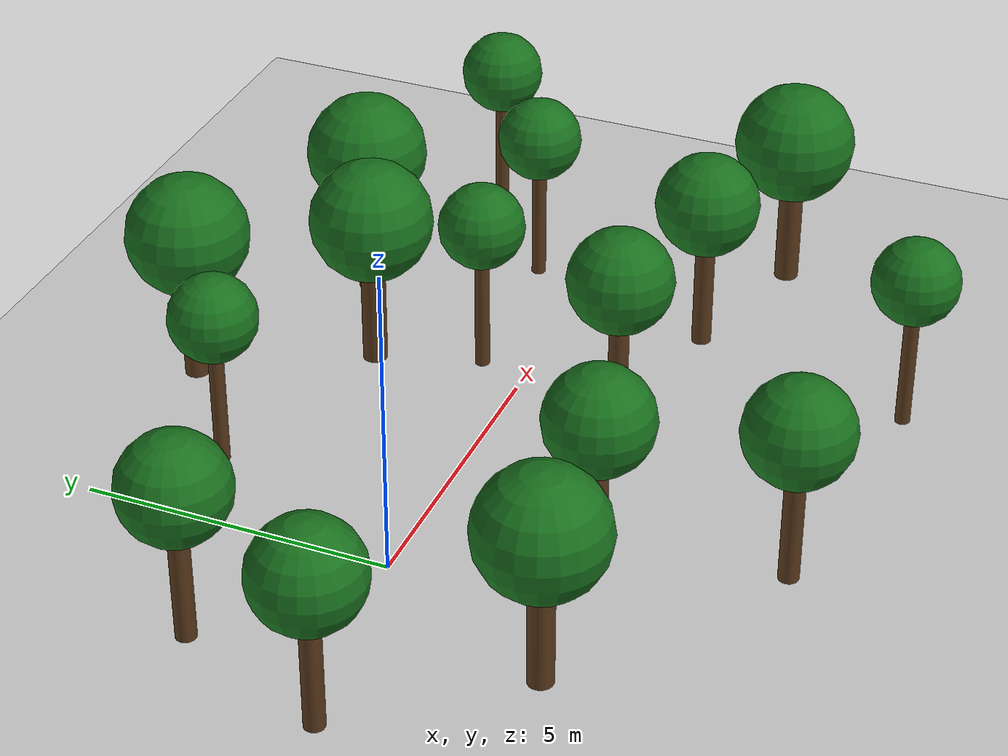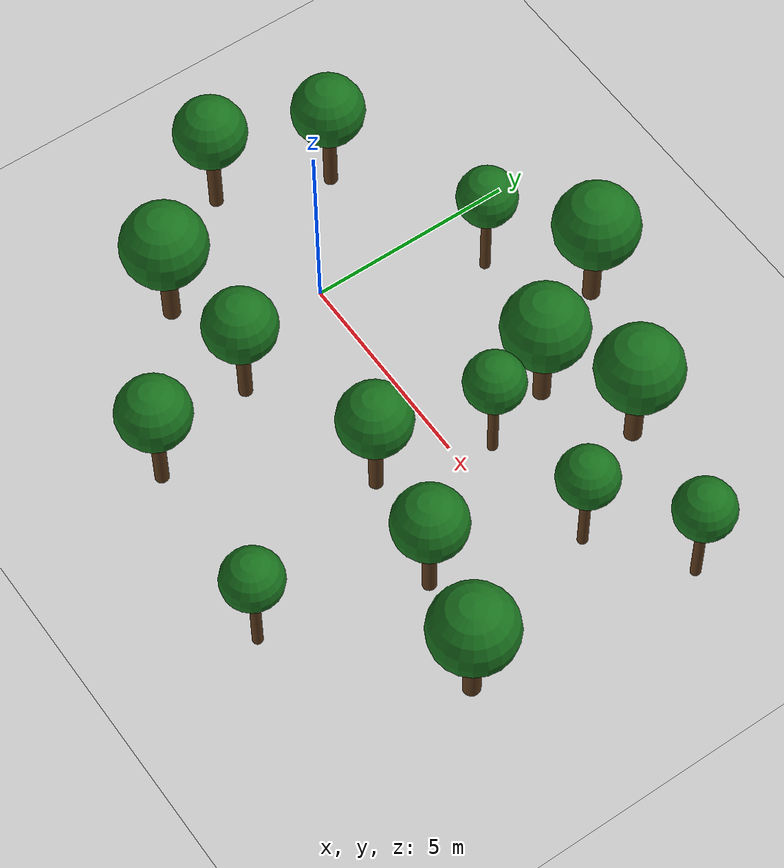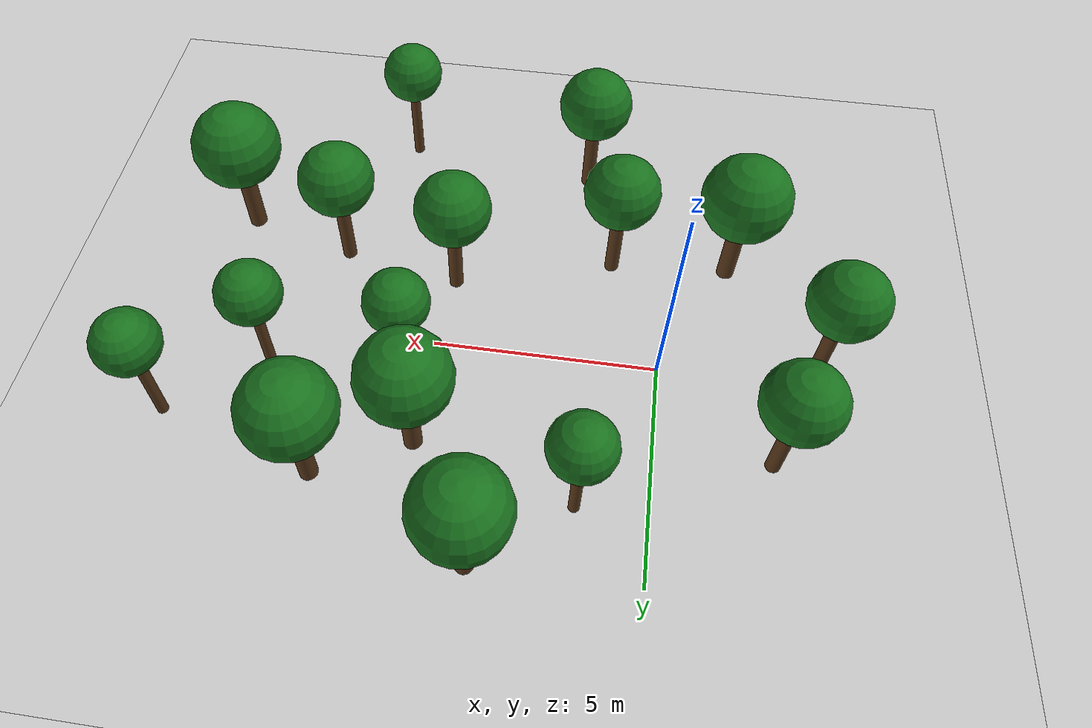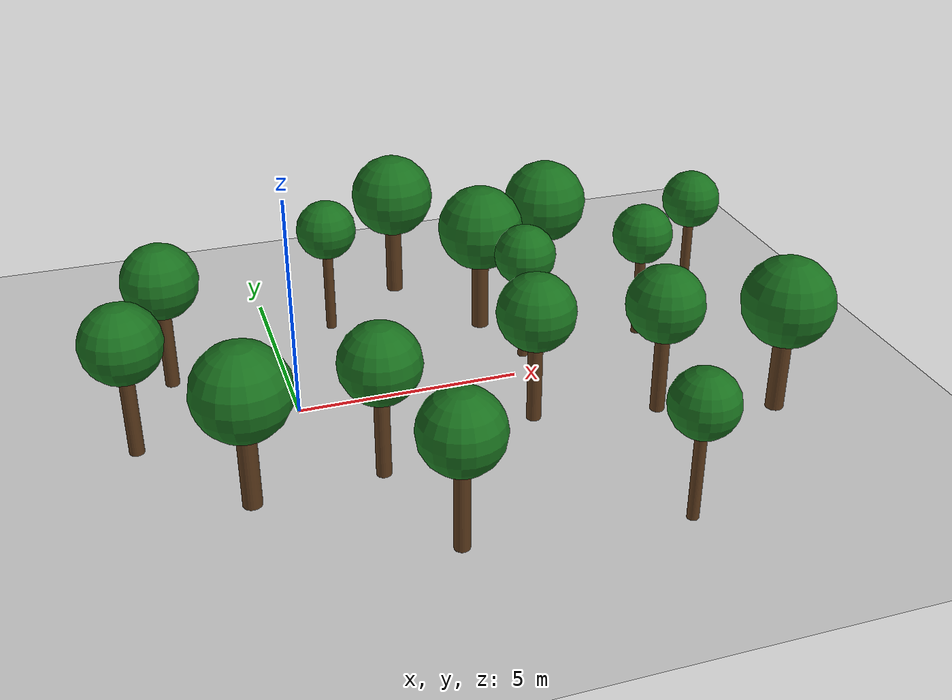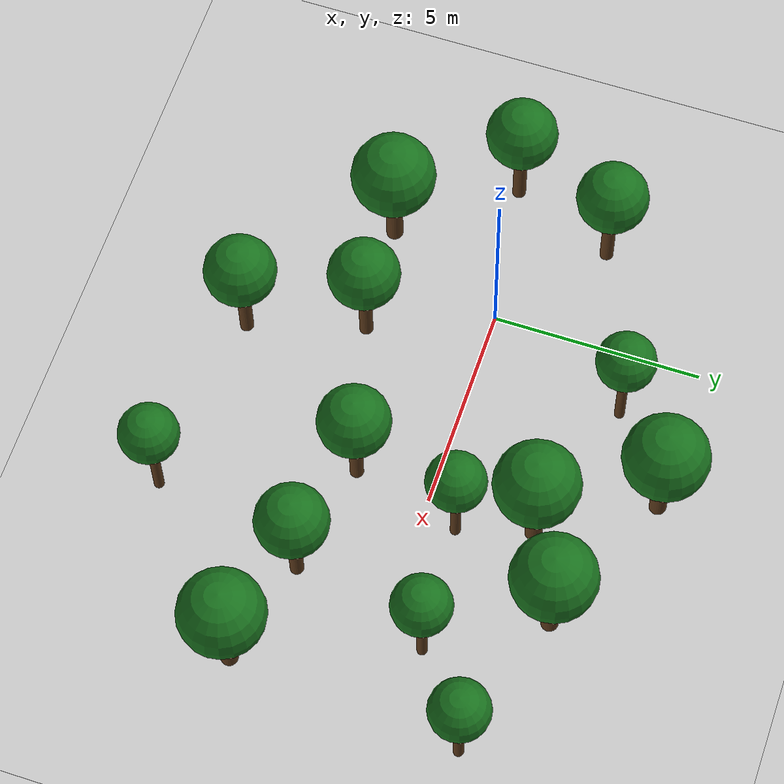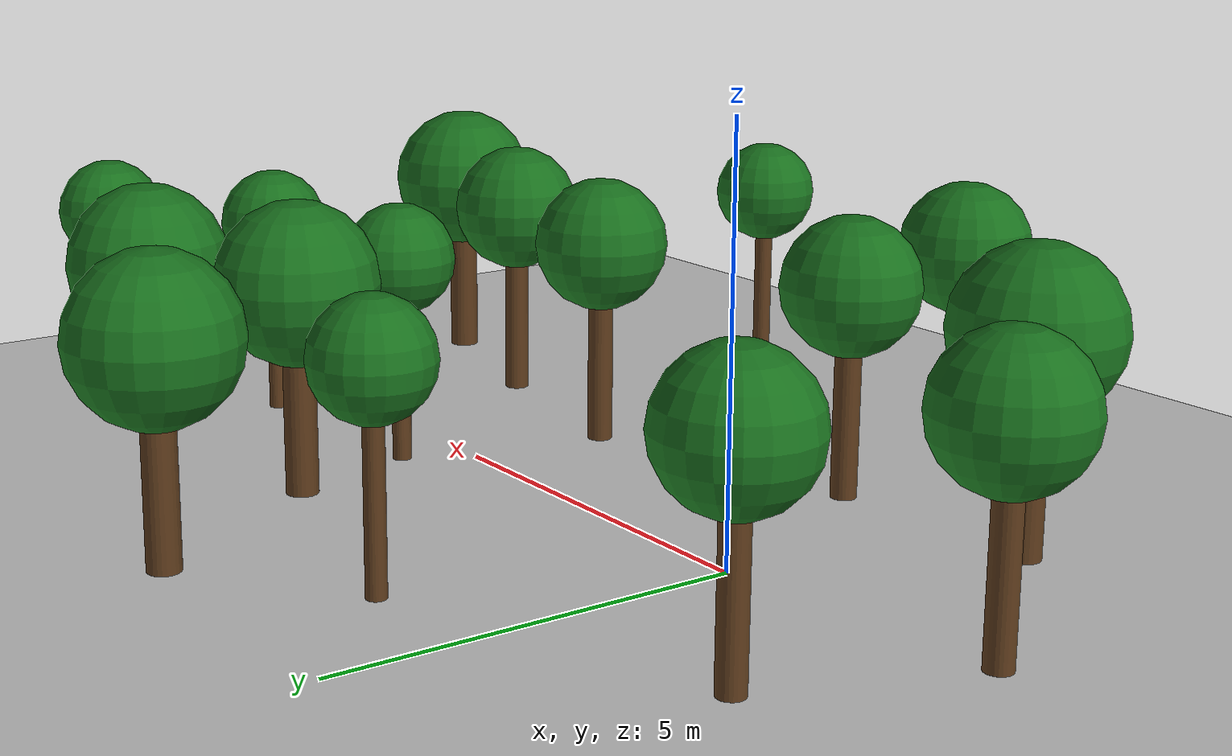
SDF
<sdf version="1.6">
 <world name="forest_people">
  <include><uri>model://ground_plane</uri></include>
  <include><uri>model://sun</uri></include>
  <scene><ambient>0.5 0.5 0.5 1</ambient><background>0.7 0.8 1.0 1</background><shadows>false</shadows></scene>
  <physics type="ode">
   <real_time_update_rate>1000</real_time_update_rate>
   <max_step_size>0.001</max_step_size>
  </physics>
  <model name="tree_1">
   <static>true</static>
   <pose>-2.5 2.0 0 0 0 0</pose>
   <link name="link">
    <collision name="trunk_collision">
     <pose>0 0 1.0 0 0 0</pose>
     <geometry><cylinder><radius>0.16</radius><length>2.0</length></cylinder></geometry>
    </collision>
    <visual name="trunk">
     <pose>0 0 1.0 0 0 0</pose>
     <geometry><cylinder><radius>0.16</radius><length>2.0</length></cylinder></geometry>
     <material><ambient>0.35 0.22 0.1 1</ambient><diffuse>0.35 0.22 0.1 1</diffuse></material>
    </visual>
    <visual name="canopy">
     <pose>0 0 2.6 0 0 0</pose>
     <geometry><sphere><radius>0.85</radius></sphere></geometry>
     <material><ambient>0.1 0.45 0.12 1</ambient><diffuse>0.1 0.45 0.12 1</diffuse></material>
    </visual>
   </link>
  </model>
  <model name="tree_2">
   <static>true</static>
   <pose>-1.5 -3.0 0 0 0 0</pose>
   <link name="link">
    <collision name="trunk_collision">
     <pose>0 0 1.0 0 0 0</pose>
     <geometry><cylinder><radius>0.2</radius><length>2.0</length></cylinder></geometry>
    </collision>
    <visual name="trunk">
     <pose>0 0 1.0 0 0 0</pose>
     <geometry><cylinder><radius>0.2</radius><length>2.0</length></cylinder></geometry>
     <material><ambient>0.35 0.22 0.1 1</ambient><diffuse>0.35 0.22 0.1 1</diffuse></material>
    </visual>
    <visual name="canopy">
     <pose>0 0 2.6 0 0 0</pose>
     <geometry><sphere><radius>1.0</radius></sphere></geometry>
     <material><ambient>0.1 0.45 0.12 1</ambient><diffuse>0.1 0.45 0.12 1</diffuse></material>
    </visual>
   </link>
  </model>
  <model name="tree_3">
   <static>true</static>
   <pose>1.5 3.5 0 0 0 0</pose>
   <link name="link">
    <collision name="trunk_collision">
     <pose>0 0 1.0 0 0 0</pose>
     <geometry><cylinder><radius>0.12</radius><length>2.0</length></cylinder></geometry>
    </collision>
    <visual name="trunk">
     <pose>0 0 1.0 0 0 0</pose>
     <geometry><cylinder><radius>0.12</radius><length>2.0</length></cylinder></geometry>
     <material><ambient>0.35 0.22 0.1 1</ambient><diffuse>0.35 0.22 0.1 1</diffuse></material>
    </visual>
    <visual name="canopy">
     <pose>0 0 2.6 0 0 0</pose>
     <geometry><sphere><radius>0.7</radius></sphere></geometry>
     <material><ambient>0.1 0.45 0.12 1</ambient><diffuse>0.1 0.45 0.12 1</diffuse></material>
    </visual>
   </link>
  </model>
  <model name="tree_4">
   <static>true</static>
   <pose>1.2 -2.8 0 0 0 0</pose>
   <link name="link">
    <collision name="trunk_collision">
     <pose>0 0 1.0 0 0 0</pose>
     <geometry><cylinder><radius>0.16</radius><length>2.0</length></cylinder></geometry>
    </collision>
    <visual name="trunk">
     <pose>0 0 1.0 0 0 0</pose>
     <geometry><cylinder><radius>0.16</radius><length>2.0</length></cylinder></geometry>
     <material><ambient>0.35 0.22 0.1 1</ambient><diffuse>0.35 0.22 0.1 1</diffuse></material>
    </visual>
    <visual name="canopy">
     <pose>0 0 2.6 0 0 0</pose>
     <geometry><sphere><radius>0.85</radius></sphere></geometry>
     <material><ambient>0.1 0.45 0.12 1</ambient><diffuse>0.1 0.45 0.12 1</diffuse></material>
    </visual>
   </link>
  </model>
  <model name="tree_5">
   <static>true</static>
   <pose>5.0 2.5 0 0 0 0</pose>
   <link name="link">
    <collision name="trunk_collision">
     <pose>0 0 1.0 0 0 0</pose>
     <geometry><cylinder><radius>0.2</radius><length>2.0</length></cylinder></geometry>
    </collision>
    <visual name="trunk">
     <pose>0 0 1.0 0 0 0</pose>
     <geometry><cylinder><radius>0.2</radius><length>2.0</length></cylinder></geometry>
     <material><ambient>0.35 0.22 0.1 1</ambient><diffuse>0.35 0.22 0.1 1</diffuse></material>
    </visual>
    <visual name="canopy">
     <pose>0 0 2.6 0 0 0</pose>
     <geometry><sphere><radius>1.0</radius></sphere></geometry>
     <material><ambient>0.1 0.45 0.12 1</ambient><diffuse>0.1 0.45 0.12 1</diffuse></material>
    </visual>
   </link>
  </model>
  <model name="tree_6">
   <static>true</static>
   <pose>5.5 0.8 0 0 0 0</pose>
   <link name="link">
    <collision name="trunk_collision">
     <pose>0 0 1.0 0 0 0</pose>
     <geometry><cylinder><radius>0.12</radius><length>2.0</length></cylinder></geometry>
    </collision>
    <visual name="trunk">
     <pose>0 0 1.0 0 0 0</pose>
     <geometry><cylinder><radius>0.12</radius><length>2.0</length></cylinder></geometry>
     <material><ambient>0.35 0.22 0.1 1</ambient><diffuse>0.35 0.22 0.1 1</diffuse></material>
    </visual>
    <visual name="canopy">
     <pose>0 0 2.6 0 0 0</pose>
     <geometry><sphere><radius>0.7</radius></sphere></geometry>
     <material><ambient>0.1 0.45 0.12 1</ambient><diffuse>0.1 0.45 0.12 1</diffuse></material>
    </visual>
   </link>
  </model>
  <model name="tree_7">
   <static>true</static>
   <pose>4.8 -1.8 0 0 0 0</pose>
   <link name="link">
    <collision name="trunk_collision">
     <pose>0 0 1.0 0 0 0</pose>
     <geometry><cylinder><radius>0.16</radius><length>2.0</length></cylinder></geometry>
    </collision>
    <visual name="trunk">
     <pose>0 0 1.0 0 0 0</pose>
     <geometry><cylinder><radius>0.16</radius><length>2.0</length></cylinder></geometry>
     <material><ambient>0.35 0.22 0.1 1</ambient><diffuse>0.35 0.22 0.1 1</diffuse></material>
    </visual>
    <visual name="canopy">
     <pose>0 0 2.6 0 0 0</pose>
     <geometry><sphere><radius>0.85</radius></sphere></geometry>
     <material><ambient>0.1 0.45 0.12 1</ambient><diffuse>0.1 0.45 0.12 1</diffuse></material>
    </visual>
   </link>
  </model>
  <model name="tree_8">
   <static>true</static>
   <pose>7.0 3.5 0 0 0 0</pose>
   <link name="link">
    <collision name="trunk_collision">
     <pose>0 0 1.0 0 0 0</pose>
     <geometry><cylinder><radius>0.2</radius><length>2.0</length></cylinder></geometry>
    </collision>
    <visual name="trunk">
     <pose>0 0 1.0 0 0 0</pose>
     <geometry><cylinder><radius>0.2</radius><length>2.0</length></cylinder></geometry>
     <material><ambient>0.35 0.22 0.1 1</ambient><diffuse>0.35 0.22 0.1 1</diffuse></material>
    </visual>
    <visual name="canopy">
     <pose>0 0 2.6 0 0 0</pose>
     <geometry><sphere><radius>1.0</radius></sphere></geometry>
     <material><ambient>0.1 0.45 0.12 1</ambient><diffuse>0.1 0.45 0.12 1</diffuse></material>
    </visual>
   </link>
  </model>
  <model name="tree_9">
   <static>true</static>
   <pose>8.5 1.0 0 0 0 0</pose>
   <link name="link">
    <collision name="trunk_collision">
     <pose>0 0 1.0 0 0 0</pose>
     <geometry><cylinder><radius>0.12</radius><length>2.0</length></cylinder></geometry>
    </collision>
    <visual name="trunk">
     <pose>0 0 1.0 0 0 0</pose>
     <geometry><cylinder><radius>0.12</radius><length>2.0</length></cylinder></geometry>
     <material><ambient>0.35 0.22 0.1 1</ambient><diffuse>0.35 0.22 0.1 1</diffuse></material>
    </visual>
    <visual name="canopy">
     <pose>0 0 2.6 0 0 0</pose>
     <geometry><sphere><radius>0.7</radius></sphere></geometry>
     <material><ambient>0.1 0.45 0.12 1</ambient><diffuse>0.1 0.45 0.12 1</diffuse></material>
    </visual>
   </link>
  </model>
  <model name="tree_10">
   <static>true</static>
   <pose>7.5 -2.3 0 0 0 0</pose>
   <link name="link">
    <collision name="trunk_collision">
     <pose>0 0 1.0 0 0 0</pose>
     <geometry><cylinder><radius>0.16</radius><length>2.0</length></cylinder></geometry>
    </collision>
    <visual name="trunk">
     <pose>0 0 1.0 0 0 0</pose>
     <geometry><cylinder><radius>0.16</radius><length>2.0</length></cylinder></geometry>
     <material><ambient>0.35 0.22 0.1 1</ambient><diffuse>0.35 0.22 0.1 1</diffuse></material>
    </visual>
    <visual name="canopy">
     <pose>0 0 2.6 0 0 0</pose>
     <geometry><sphere><radius>0.85</radius></sphere></geometry>
     <material><ambient>0.1 0.45 0.12 1</ambient><diffuse>0.1 0.45 0.12 1</diffuse></material>
    </visual>
   </link>
  </model>
  <model name="tree_11">
   <static>true</static>
   <pose>10.0 -3.0 0 0 0 0</pose>
   <link name="link">
    <collision name="trunk_collision">
     <pose>0 0 1.0 0 0 0</pose>
     <geometry><cylinder><radius>0.2</radius><length>2.0</length></cylinder></geometry>
    </collision>
    <visual name="trunk">
     <pose>0 0 1.0 0 0 0</pose>
     <geometry><cylinder><radius>0.2</radius><length>2.0</length></cylinder></geometry>
     <material><ambient>0.35 0.22 0.1 1</ambient><diffuse>0.35 0.22 0.1 1</diffuse></material>
    </visual>
    <visual name="canopy">
     <pose>0 0 2.6 0 0 0</pose>
     <geometry><sphere><radius>1.0</radius></sphere></geometry>
     <material><ambient>0.1 0.45 0.12 1</ambient><diffuse>0.1 0.45 0.12 1</diffuse></material>
    </visual>
   </link>
  </model>
  <model name="tree_12">
   <static>true</static>
   <pose>10.5 2.5 0 0 0 0</pose>
   <link name="link">
    <collision name="trunk_collision">
     <pose>0 0 1.0 0 0 0</pose>
     <geometry><cylinder><radius>0.12</radius><length>2.0</length></cylinder></geometry>
    </collision>
    <visual name="trunk">
     <pose>0 0 1.0 0 0 0</pose>
     <geometry><cylinder><radius>0.12</radius><length>2.0</length></cylinder></geometry>
     <material><ambient>0.35 0.22 0.1 1</ambient><diffuse>0.35 0.22 0.1 1</diffuse></material>
    </visual>
    <visual name="canopy">
     <pose>0 0 2.6 0 0 0</pose>
     <geometry><sphere><radius>0.7</radius></sphere></geometry>
     <material><ambient>0.1 0.45 0.12 1</ambient><diffuse>0.1 0.45 0.12 1</diffuse></material>
    </visual>
   </link>
  </model>
  <model name="tree_13">
   <static>true</static>
   <pose>-3.5 -0.5 0 0 0 0</pose>
   <link name="link">
    <collision name="trunk_collision">
     <pose>0 0 1.0 0 0 0</pose>
     <geometry><cylinder><radius>0.16</radius><length>2.0</length></cylinder></geometry>
    </collision>
    <visual name="trunk">
     <pose>0 0 1.0 0 0 0</pose>
     <geometry><cylinder><radius>0.16</radius><length>2.0</length></cylinder></geometry>
     <material><ambient>0.35 0.22 0.1 1</ambient><diffuse>0.35 0.22 0.1 1</diffuse></material>
    </visual>
    <visual name="canopy">
     <pose>0 0 2.6 0 0 0</pose>
     <geometry><sphere><radius>0.85</radius></sphere></geometry>
     <material><ambient>0.1 0.45 0.12 1</ambient><diffuse>0.1 0.45 0.12 1</diffuse></material>
    </visual>
   </link>
  </model>
  <model name="tree_14">
   <static>true</static>
   <pose>3.5 5.0 0 0 0 0</pose>
   <link name="link">
    <collision name="trunk_collision">
     <pose>0 0 1.0 0 0 0</pose>
     <geometry><cylinder><radius>0.2</radius><length>2.0</length></cylinder></geometry>
    </collision>
    <visual name="trunk">
     <pose>0 0 1.0 0 0 0</pose>
     <geometry><cylinder><radius>0.2</radius><length>2.0</length></cylinder></geometry>
     <material><ambient>0.35 0.22 0.1 1</ambient><diffuse>0.35 0.22 0.1 1</diffuse></material>
    </visual>
    <visual name="canopy">
     <pose>0 0 2.6 0 0 0</pose>
     <geometry><sphere><radius>1.0</radius></sphere></geometry>
     <material><ambient>0.1 0.45 0.12 1</ambient><diffuse>0.1 0.45 0.12 1</diffuse></material>
    </visual>
   </link>
  </model>
  <model name="tree_15">
   <static>true</static>
   <pose>6.5 -6.0 0 0 0 0</pose>
   <link name="link">
    <collision name="trunk_collision">
     <pose>0 0 1.0 0 0 0</pose>
     <geometry><cylinder><radius>0.12</radius><length>2.0</length></cylinder></geometry>
    </collision>
    <visual name="trunk">
     <pose>0 0 1.0 0 0 0</pose>
     <geometry><cylinder><radius>0.12</radius><length>2.0</length></cylinder></geometry>
     <material><ambient>0.35 0.22 0.1 1</ambient><diffuse>0.35 0.22 0.1 1</diffuse></material>
    </visual>
    <visual name="canopy">
     <pose>0 0 2.6 0 0 0</pose>
     <geometry><sphere><radius>0.7</radius></sphere></geometry>
     <material><ambient>0.1 0.45 0.12 1</ambient><diffuse>0.1 0.45 0.12 1</diffuse></material>
    </visual>
   </link>
  </model>
  <model name="tree_16">
   <static>true</static>
   <pose>2.0 -5.5 0 0 0 0</pose>
   <link name="link">
    <collision name="trunk_collision">
     <pose>0 0 1.0 0 0 0</pose>
     <geometry><cylinder><radius>0.16</radius><length>2.0</length></cylinder></geometry>
    </collision>
    <visual name="trunk">
     <pose>0 0 1.0 0 0 0</pose>
     <geometry><cylinder><radius>0.16</radius><length>2.0</length></cylinder></geometry>
     <material><ambient>0.35 0.22 0.1 1</ambient><diffuse>0.35 0.22 0.1 1</diffuse></material>
    </visual>
    <visual name="canopy">
     <pose>0 0 2.6 0 0 0</pose>
     <geometry><sphere><radius>0.85</radius></sphere></geometry>
     <material><ambient>0.1 0.45 0.12 1</ambient><diffuse>0.1 0.45 0.12 1</diffuse></material>
    </visual>
   </link>
  </model>
 </world>
</sdf>
